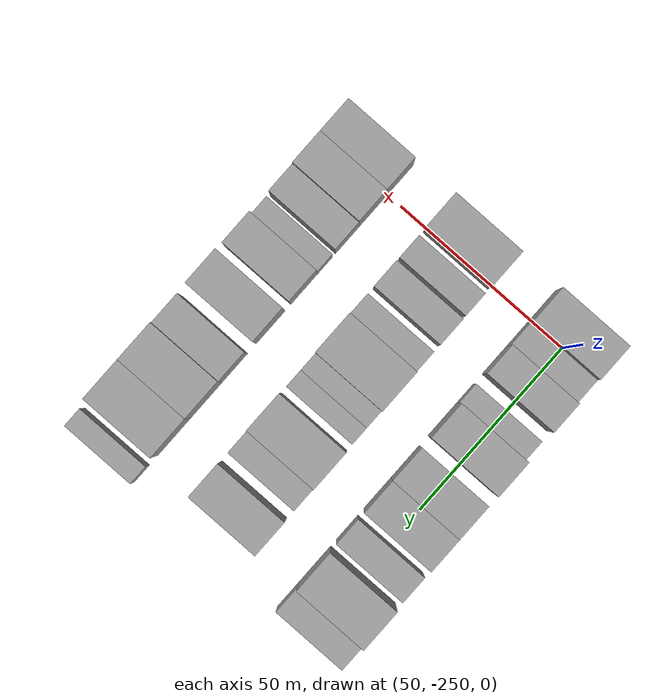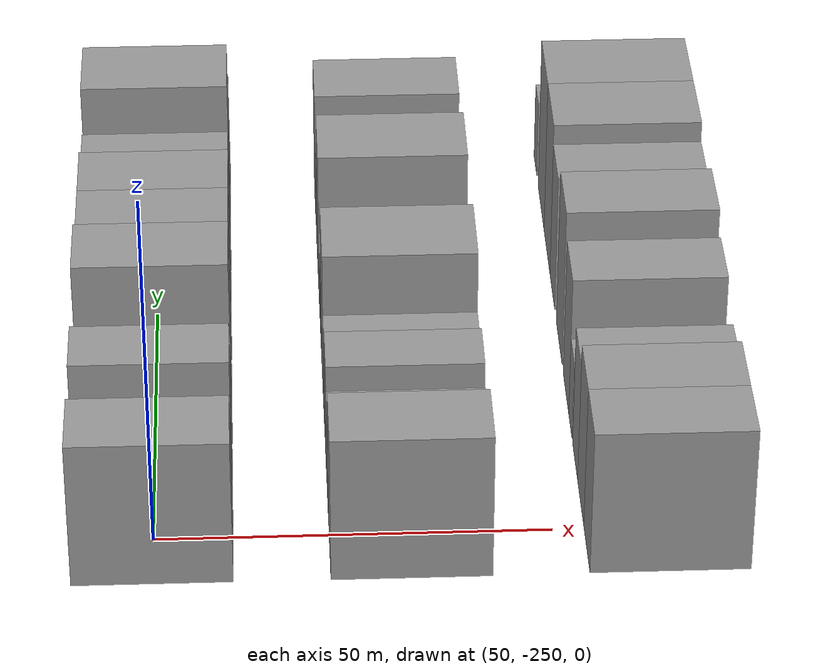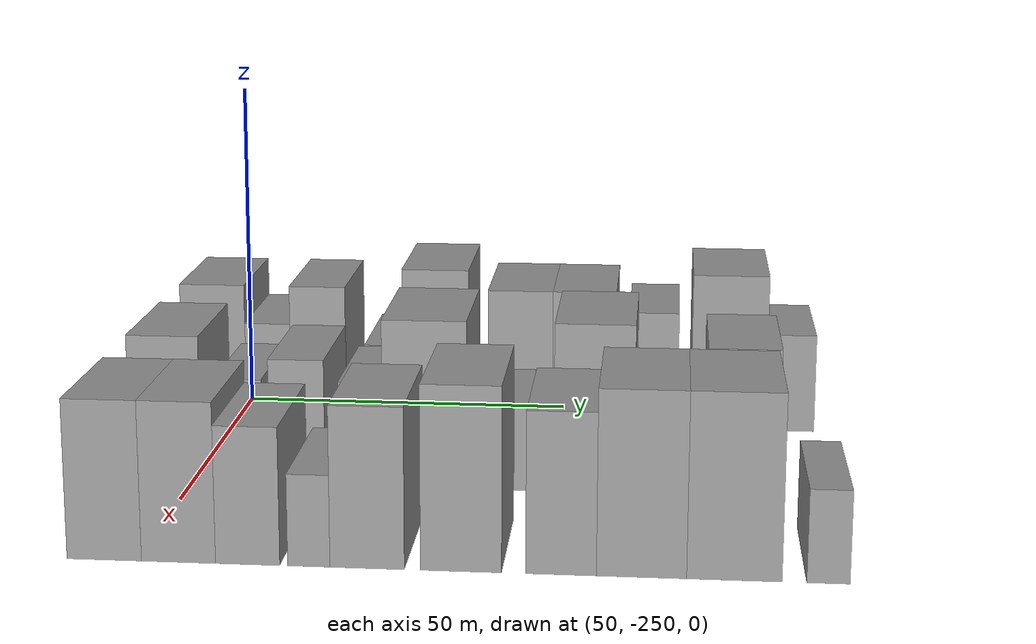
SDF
<sdf version="1.6">
 <world name="default">
  <model name="building_11">
   <static>1</static>
   <pose>50.0000 -253.9118 0 0.000000 0.000000 0.000000</pose>
   <link name="link">
    <pose>0 0 10.50 0 0 0</pose>
    <collision name="collision"><geometry><box><size>20.0000 10.0828 21.0000</size></box></geometry></collision>
    <visual name="visual">
     <cast_shadows>0</cast_shadows>
     <geometry><box><size>20.0000 10.0828 21.0000</size></box></geometry>
     <material>
      <script>
       <uri>model://grey_wall/materials/scripts</uri>
       <uri>model://grey_wall/materials/textures</uri>
       <name>vrc/grey_wall</name>
      </script>
     </material>
    </visual>
   </link>
  </model>
  <model name="building_12">
   <static>1</static>
   <pose>50.0000 -245.3483 0 0.000000 0.000000 0.000000</pose>
   <link name="link">
    <pose>0 0 7.50 0 0 0</pose>
    <collision name="collision"><geometry><box><size>20.0000 7.0441 15.0000</size></box></geometry></collision>
    <visual name="visual">
     <cast_shadows>0</cast_shadows>
     <geometry><box><size>20.0000 7.0441 15.0000</size></box></geometry>
     <material>
      <script>
       <uri>model://grey_wall/materials/scripts</uri>
       <uri>model://grey_wall/materials/textures</uri>
       <name>vrc/grey_wall</name>
      </script>
     </material>
    </visual>
   </link>
  </model>
  <model name="building_13">
   <static>1</static>
   <pose>50.0000 -237.5058 0 0.000000 0.000000 0.000000</pose>
   <link name="link">
    <pose>0 0 10.50 0 0 0</pose>
    <collision name="collision"><geometry><box><size>20.0000 8.6408 21.0000</size></box></geometry></collision>
    <visual name="visual">
     <cast_shadows>0</cast_shadows>
     <geometry><box><size>20.0000 8.6408 21.0000</size></box></geometry>
     <material>
      <script>
       <uri>model://grey_wall/materials/scripts</uri>
       <uri>model://grey_wall/materials/textures</uri>
       <name>vrc/grey_wall</name>
      </script>
     </material>
    </visual>
   </link>
  </model>
  <model name="building_14">
   <static>1</static>
   <pose>50.0000 -227.2770 0 0.000000 0.000000 0.000000</pose>
   <link name="link">
    <pose>0 0 6.00 0 0 0</pose>
    <collision name="collision"><geometry><box><size>20.0000 5.8169 12.0000</size></box></geometry></collision>
    <visual name="visual">
     <cast_shadows>0</cast_shadows>
     <geometry><box><size>20.0000 5.8169 12.0000</size></box></geometry>
     <material>
      <script>
       <uri>model://grey_wall/materials/scripts</uri>
       <uri>model://grey_wall/materials/textures</uri>
       <name>vrc/grey_wall</name>
      </script>
     </material>
    </visual>
   </link>
  </model>
  <model name="building_15">
   <static>1</static>
   <pose>50.0000 -219.2391 0 0.000000 0.000000 0.000000</pose>
   <link name="link">
    <pose>0 0 12.00 0 0 0</pose>
    <collision name="collision"><geometry><box><size>20.0000 10.2589 24.0000</size></box></geometry></collision>
    <visual name="visual">
     <cast_shadows>0</cast_shadows>
     <geometry><box><size>20.0000 10.2589 24.0000</size></box></geometry>
     <material>
      <script>
       <uri>model://grey_wall/materials/scripts</uri>
       <uri>model://grey_wall/materials/textures</uri>
       <name>vrc/grey_wall</name>
      </script>
     </material>
    </visual>
   </link>
  </model>
  <model name="building_16">
   <static>1</static>
   <pose>50.0000 -206.1436 0 0.000000 0.000000 0.000000</pose>
   <link name="link">
    <pose>0 0 10.50 0 0 0</pose>
    <collision name="collision"><geometry><box><size>20.0000 9.9321 21.0000</size></box></geometry></collision>
    <visual name="visual">
     <cast_shadows>0</cast_shadows>
     <geometry><box><size>20.0000 9.9321 21.0000</size></box></geometry>
     <material>
      <script>
       <uri>model://grey_wall/materials/scripts</uri>
       <uri>model://grey_wall/materials/textures</uri>
       <name>vrc/grey_wall</name>
      </script>
     </material>
    </visual>
   </link>
  </model>
  <model name="building_17">
   <static>1</static>
   <pose>50.0000 -196.3686 0 0.000000 0.000000 0.000000</pose>
   <link name="link">
    <pose>0 0 10.50 0 0 0</pose>
    <collision name="collision"><geometry><box><size>20.0000 9.6181 21.0000</size></box></geometry></collision>
    <visual name="visual">
     <cast_shadows>0</cast_shadows>
     <geometry><box><size>20.0000 9.6181 21.0000</size></box></geometry>
     <material>
      <script>
       <uri>model://grey_wall/materials/scripts</uri>
       <uri>model://grey_wall/materials/textures</uri>
       <name>vrc/grey_wall</name>
      </script>
     </material>
    </visual>
   </link>
  </model>
  <model name="building_18">
   <static>1</static>
   <pose>50.0000 -185.7863 0 0.000000 0.000000 0.000000</pose>
   <link name="link">
    <pose>0 0 9.00 0 0 0</pose>
    <collision name="collision"><geometry><box><size>20.0000 7.5465 18.0000</size></box></geometry></collision>
    <visual name="visual">
     <cast_shadows>0</cast_shadows>
     <geometry><box><size>20.0000 7.5465 18.0000</size></box></geometry>
     <material>
      <script>
       <uri>model://grey_wall/materials/scripts</uri>
       <uri>model://grey_wall/materials/textures</uri>
       <name>vrc/grey_wall</name>
      </script>
     </material>
    </visual>
   </link>
  </model>
  <model name="building_19">
   <static>1</static>
   <pose>50.0000 -174.3009 0 0.000000 0.000000 0.000000</pose>
   <link name="link">
    <pose>0 0 12.00 0 0 0</pose>
    <collision name="collision"><geometry><box><size>20.0000 11.4243 24.0000</size></box></geometry></collision>
    <visual name="visual">
     <cast_shadows>0</cast_shadows>
     <geometry><box><size>20.0000 11.4243 24.0000</size></box></geometry>
     <material>
      <script>
       <uri>model://grey_wall/materials/scripts</uri>
       <uri>model://grey_wall/materials/textures</uri>
       <name>vrc/grey_wall</name>
      </script>
     </material>
    </visual>
   </link>
  </model>
  <model name="building_20">
   <static>1</static>
   <pose>50.0000 -164.9584 0 0.000000 0.000000 0.000000</pose>
   <link name="link">
    <pose>0 0 7.50 0 0 0</pose>
    <collision name="collision"><geometry><box><size>20.0000 7.2607 15.0000</size></box></geometry></collision>
    <visual name="visual">
     <cast_shadows>0</cast_shadows>
     <geometry><box><size>20.0000 7.2607 15.0000</size></box></geometry>
     <material>
      <script>
       <uri>model://grey_wall/materials/scripts</uri>
       <uri>model://grey_wall/materials/textures</uri>
       <name>vrc/grey_wall</name>
      </script>
     </material>
    </visual>
   </link>
  </model>
  <model name="building_87">
   <static>1</static>
   <pose>82.0000 -253.9240 0 0.000000 0.000000 0.000000</pose>
   <link name="link">
    <pose>0 0 10.50 0 0 0</pose>
    <collision name="collision"><geometry><box><size>20.0000 10.2030 21.0000</size></box></geometry></collision>
    <visual name="visual">
     <cast_shadows>0</cast_shadows>
     <geometry><box><size>20.0000 10.2030 21.0000</size></box></geometry>
     <material>
      <script>
       <uri>model://grey_wall/materials/scripts</uri>
       <uri>model://grey_wall/materials/textures</uri>
       <name>vrc/grey_wall</name>
      </script>
     </material>
    </visual>
   </link>
  </model>
  <model name="building_88">
   <static>1</static>
   <pose>82.0000 -243.4356 0 0.000000 0.000000 0.000000</pose>
   <link name="link">
    <pose>0 0 7.50 0 0 0</pose>
    <collision name="collision"><geometry><box><size>20.0000 6.7737 15.0000</size></box></geometry></collision>
    <visual name="visual">
     <cast_shadows>0</cast_shadows>
     <geometry><box><size>20.0000 6.7737 15.0000</size></box></geometry>
     <material>
      <script>
       <uri>model://grey_wall/materials/scripts</uri>
       <uri>model://grey_wall/materials/textures</uri>
       <name>vrc/grey_wall</name>
      </script>
     </material>
    </visual>
   </link>
  </model>
  <model name="building_89">
   <static>1</static>
   <pose>82.0000 -235.1332 0 0.000000 0.000000 0.000000</pose>
   <link name="link">
    <pose>0 0 9.00 0 0 0</pose>
    <collision name="collision"><geometry><box><size>20.0000 7.8310 18.0000</size></box></geometry></collision>
    <visual name="visual">
     <cast_shadows>0</cast_shadows>
     <geometry><box><size>20.0000 7.8310 18.0000</size></box></geometry>
     <material>
      <script>
       <uri>model://grey_wall/materials/scripts</uri>
       <uri>model://grey_wall/materials/textures</uri>
       <name>vrc/grey_wall</name>
      </script>
     </material>
    </visual>
   </link>
  </model>
  <model name="building_90">
   <static>1</static>
   <pose>82.0000 -226.1555 0 0.000000 0.000000 0.000000</pose>
   <link name="link">
    <pose>0 0 7.50 0 0 0</pose>
    <collision name="collision"><geometry><box><size>20.0000 6.1243 15.0000</size></box></geometry></collision>
    <visual name="visual">
     <cast_shadows>0</cast_shadows>
     <geometry><box><size>20.0000 6.1243 15.0000</size></box></geometry>
     <material>
      <script>
       <uri>model://grey_wall/materials/scripts</uri>
       <uri>model://grey_wall/materials/textures</uri>
       <name>vrc/grey_wall</name>
      </script>
     </material>
    </visual>
   </link>
  </model>
  <model name="building_91">
   <static>1</static>
   <pose>82.0000 -217.1970 0 0.000000 0.000000 0.000000</pose>
   <link name="link">
    <pose>0 0 12.00 0 0 0</pose>
    <collision name="collision"><geometry><box><size>20.0000 11.7927 24.0000</size></box></geometry></collision>
    <visual name="visual">
     <cast_shadows>0</cast_shadows>
     <geometry><box><size>20.0000 11.7927 24.0000</size></box></geometry>
     <material>
      <script>
       <uri>model://grey_wall/materials/scripts</uri>
       <uri>model://grey_wall/materials/textures</uri>
       <name>vrc/grey_wall</name>
      </script>
     </material>
    </visual>
   </link>
  </model>
  <model name="building_92">
   <static>1</static>
   <pose>82.0000 -208.7288 0 0.000000 0.000000 0.000000</pose>
   <link name="link">
    <pose>0 0 6.00 0 0 0</pose>
    <collision name="collision"><geometry><box><size>20.0000 5.1437 12.0000</size></box></geometry></collision>
    <visual name="visual">
     <cast_shadows>0</cast_shadows>
     <geometry><box><size>20.0000 5.1437 12.0000</size></box></geometry>
     <material>
      <script>
       <uri>model://grey_wall/materials/scripts</uri>
       <uri>model://grey_wall/materials/textures</uri>
       <name>vrc/grey_wall</name>
      </script>
     </material>
    </visual>
   </link>
  </model>
  <model name="building_93">
   <static>1</static>
   <pose>82.0000 -203.6591 0 0.000000 0.000000 0.000000</pose>
   <link name="link">
    <pose>0 0 6.00 0 0 0</pose>
    <collision name="collision"><geometry><box><size>20.0000 4.9956 12.0000</size></box></geometry></collision>
    <visual name="visual">
     <cast_shadows>0</cast_shadows>
     <geometry><box><size>20.0000 4.9956 12.0000</size></box></geometry>
     <material>
      <script>
       <uri>model://grey_wall/materials/scripts</uri>
       <uri>model://grey_wall/materials/textures</uri>
       <name>vrc/grey_wall</name>
      </script>
     </material>
    </visual>
   </link>
  </model>
  <model name="building_94">
   <static>1</static>
   <pose>82.0000 -193.6045 0 0.000000 0.000000 0.000000</pose>
   <link name="link">
    <pose>0 0 12.00 0 0 0</pose>
    <collision name="collision"><geometry><box><size>20.0000 11.1137 24.0000</size></box></geometry></collision>
    <visual name="visual">
     <cast_shadows>0</cast_shadows>
     <geometry><box><size>20.0000 11.1137 24.0000</size></box></geometry>
     <material>
      <script>
       <uri>model://grey_wall/materials/scripts</uri>
       <uri>model://grey_wall/materials/textures</uri>
       <name>vrc/grey_wall</name>
      </script>
     </material>
    </visual>
   </link>
  </model>
  <model name="building_95">
   <static>1</static>
   <pose>82.0000 -184.6211 0 0.000000 0.000000 0.000000</pose>
   <link name="link">
    <pose>0 0 7.50 0 0 0</pose>
    <collision name="collision"><geometry><box><size>20.0000 6.8530 15.0000</size></box></geometry></collision>
    <visual name="visual">
     <cast_shadows>0</cast_shadows>
     <geometry><box><size>20.0000 6.8530 15.0000</size></box></geometry>
     <material>
      <script>
       <uri>model://grey_wall/materials/scripts</uri>
       <uri>model://grey_wall/materials/textures</uri>
       <name>vrc/grey_wall</name>
      </script>
     </material>
    </visual>
   </link>
  </model>
  <model name="building_96">
   <static>1</static>
   <pose>82.0000 -173.1901 0 0.000000 0.000000 0.000000</pose>
   <link name="link">
    <pose>0 0 10.50 0 0 0</pose>
    <collision name="collision"><geometry><box><size>20.0000 10.0090 21.0000</size></box></geometry></collision>
    <visual name="visual">
     <cast_shadows>0</cast_shadows>
     <geometry><box><size>20.0000 10.0090 21.0000</size></box></geometry>
     <material>
      <script>
       <uri>model://grey_wall/materials/scripts</uri>
       <uri>model://grey_wall/materials/textures</uri>
       <name>vrc/grey_wall</name>
      </script>
     </material>
    </visual>
   </link>
  </model>
  <model name="building_168">
   <static>1</static>
   <pose>114.0000 -254.1169 0 0.000000 0.000000 0.000000</pose>
   <link name="link">
    <pose>0 0 10.50 0 0 0</pose>
    <collision name="collision"><geometry><box><size>20.0000 9.5848 21.0000</size></box></geometry></collision>
    <visual name="visual">
     <cast_shadows>0</cast_shadows>
     <geometry><box><size>20.0000 9.5848 21.0000</size></box></geometry>
     <material>
      <script>
       <uri>model://grey_wall/materials/scripts</uri>
       <uri>model://grey_wall/materials/textures</uri>
       <name>vrc/grey_wall</name>
      </script>
     </material>
    </visual>
   </link>
  </model>
  <model name="building_169">
   <static>1</static>
   <pose>114.0000 -244.5821 0 0.000000 0.000000 0.000000</pose>
   <link name="link">
    <pose>0 0 10.50 0 0 0</pose>
    <collision name="collision"><geometry><box><size>20.0000 9.4849 21.0000</size></box></geometry></collision>
    <visual name="visual">
     <cast_shadows>0</cast_shadows>
     <geometry><box><size>20.0000 9.4849 21.0000</size></box></geometry>
     <material>
      <script>
       <uri>model://grey_wall/materials/scripts</uri>
       <uri>model://grey_wall/materials/textures</uri>
       <name>vrc/grey_wall</name>
      </script>
     </material>
    </visual>
   </link>
  </model>
  <model name="building_170">
   <static>1</static>
   <pose>114.0000 -235.7529 0 0.000000 0.000000 0.000000</pose>
   <link name="link">
    <pose>0 0 9.00 0 0 0</pose>
    <collision name="collision"><geometry><box><size>20.0000 8.1736 18.0000</size></box></geometry></collision>
    <visual name="visual">
     <cast_shadows>0</cast_shadows>
     <geometry><box><size>20.0000 8.1736 18.0000</size></box></geometry>
     <material>
      <script>
       <uri>model://grey_wall/materials/scripts</uri>
       <uri>model://grey_wall/materials/textures</uri>
       <name>vrc/grey_wall</name>
      </script>
     </material>
    </visual>
   </link>
  </model>
  <model name="building_171">
   <static>1</static>
   <pose>114.0000 -227.9977 0 0.000000 0.000000 0.000000</pose>
   <link name="link">
    <pose>0 0 6.00 0 0 0</pose>
    <collision name="collision"><geometry><box><size>20.0000 5.3368 12.0000</size></box></geometry></collision>
    <visual name="visual">
     <cast_shadows>0</cast_shadows>
     <geometry><box><size>20.0000 5.3368 12.0000</size></box></geometry>
     <material>
      <script>
       <uri>model://grey_wall/materials/scripts</uri>
       <uri>model://grey_wall/materials/textures</uri>
       <name>vrc/grey_wall</name>
      </script>
     </material>
    </visual>
   </link>
  </model>
  <model name="building_172">
   <static>1</static>
   <pose>114.0000 -220.6401 0 0.000000 0.000000 0.000000</pose>
   <link name="link">
    <pose>0 0 10.50 0 0 0</pose>
    <collision name="collision"><geometry><box><size>20.0000 9.3783 21.0000</size></box></geometry></collision>
    <visual name="visual">
     <cast_shadows>0</cast_shadows>
     <geometry><box><size>20.0000 9.3783 21.0000</size></box></geometry>
     <material>
      <script>
       <uri>model://grey_wall/materials/scripts</uri>
       <uri>model://grey_wall/materials/textures</uri>
       <name>vrc/grey_wall</name>
      </script>
     </material>
    </visual>
   </link>
  </model>
  <model name="building_173">
   <static>1</static>
   <pose>114.0000 -208.8828 0 0.000000 0.000000 0.000000</pose>
   <link name="link">
    <pose>0 0 12.00 0 0 0</pose>
    <collision name="collision"><geometry><box><size>20.0000 10.1363 24.0000</size></box></geometry></collision>
    <visual name="visual">
     <cast_shadows>0</cast_shadows>
     <geometry><box><size>20.0000 10.1363 24.0000</size></box></geometry>
     <material>
      <script>
       <uri>model://grey_wall/materials/scripts</uri>
       <uri>model://grey_wall/materials/textures</uri>
       <name>vrc/grey_wall</name>
      </script>
     </material>
    </visual>
   </link>
  </model>
  <model name="building_174">
   <static>1</static>
   <pose>114.0000 -196.4392 0 0.000000 0.000000 0.000000</pose>
   <link name="link">
    <pose>0 0 10.50 0 0 0</pose>
    <collision name="collision"><geometry><box><size>20.0000 8.7510 21.0000</size></box></geometry></collision>
    <visual name="visual">
     <cast_shadows>0</cast_shadows>
     <geometry><box><size>20.0000 8.7510 21.0000</size></box></geometry>
     <material>
      <script>
       <uri>model://grey_wall/materials/scripts</uri>
       <uri>model://grey_wall/materials/textures</uri>
       <name>vrc/grey_wall</name>
      </script>
     </material>
    </visual>
   </link>
  </model>
  <model name="building_175">
   <static>1</static>
   <pose>114.0000 -186.5176 0 0.000000 0.000000 0.000000</pose>
   <link name="link">
    <pose>0 0 12.00 0 0 0</pose>
    <collision name="collision"><geometry><box><size>20.0000 11.0921 24.0000</size></box></geometry></collision>
    <visual name="visual">
     <cast_shadows>0</cast_shadows>
     <geometry><box><size>20.0000 11.0921 24.0000</size></box></geometry>
     <material>
      <script>
       <uri>model://grey_wall/materials/scripts</uri>
       <uri>model://grey_wall/materials/textures</uri>
       <name>vrc/grey_wall</name>
      </script>
     </material>
    </visual>
   </link>
  </model>
  <model name="building_176">
   <static>1</static>
   <pose>114.0000 -175.1453 0 0.000000 0.000000 0.000000</pose>
   <link name="link">
    <pose>0 0 12.00 0 0 0</pose>
    <collision name="collision"><geometry><box><size>20.0000 11.6524 24.0000</size></box></geometry></collision>
    <visual name="visual">
     <cast_shadows>0</cast_shadows>
     <geometry><box><size>20.0000 11.6524 24.0000</size></box></geometry>
     <material>
      <script>
       <uri>model://grey_wall/materials/scripts</uri>
       <uri>model://grey_wall/materials/textures</uri>
       <name>vrc/grey_wall</name>
      </script>
     </material>
    </visual>
   </link>
  </model>
  <model name="building_177">
   <static>1</static>
   <pose>114.0000 -163.6974 0 0.000000 0.000000 0.000000</pose>
   <link name="link">
    <pose>0 0 6.00 0 0 0</pose>
    <collision name="collision"><geometry><box><size>20.0000 5.2435 12.0000</size></box></geometry></collision>
    <visual name="visual">
     <cast_shadows>0</cast_shadows>
     <geometry><box><size>20.0000 5.2435 12.0000</size></box></geometry>
     <material>
      <script>
       <uri>model://grey_wall/materials/scripts</uri>
       <uri>model://grey_wall/materials/textures</uri>
       <name>vrc/grey_wall</name>
      </script>
     </material>
    </visual>
   </link>
  </model>
 </world>
</sdf>
